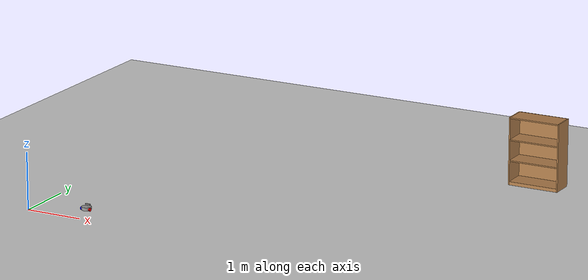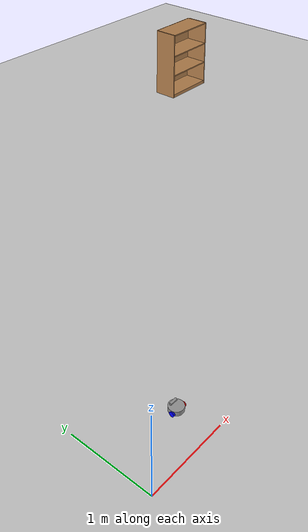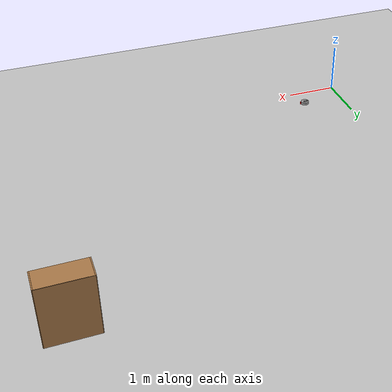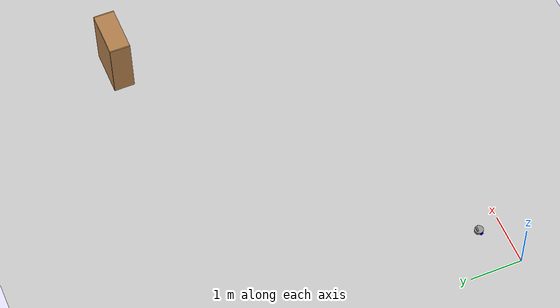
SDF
<sdf version="1.6">
 <world name="default">
  <light name="sun" type="directional">
   <pose>0 0 10 0 -0 0</pose>
   <diffuse>0.8 0.8 0.8 1</diffuse>
   <specular>0.2 0.2 0.2 1</specular>
   <attenuation>
    <range>1000</range>
    <constant>0.9</constant>
    <linear>0.01</linear>
    <quadratic>0.001</quadratic>
   </attenuation>
   <direction>-0.5 0.1 -0.9</direction>
  </light>
  <model name="ground_plane">
   <static>1</static>
   <link name="link">
    <collision name="collision">
     <geometry><plane><normal>0 0 1</normal><size>100 100</size></plane></geometry>
     <surface>
      <contact><collide_bitmask>65535</collide_bitmask></contact>
      <friction><ode><mu>100</mu><mu2>50</mu2></ode></friction>
     </surface>
    </collision>
    <visual name="visual">
     <cast_shadows>0</cast_shadows>
     <geometry><plane><normal>0 0 1</normal><size>100 100</size></plane></geometry>
     <material>
      <script><uri>file://media/materials/scripts/gazebo.material</uri><name>Gazebo/Grey</name></script>
     </material>
    </visual>
   </link>
  </model>
  <gravity>0 0 -9.8</gravity>
  <magnetic_field>6e-06 2.3e-05 -4.2e-05</magnetic_field>
  <atmosphere type="adiabatic"/>
  <physics name="default_physics" default="0" type="ode">
   <max_step_size>0.001</max_step_size>
   <real_time_factor>1</real_time_factor>
   <real_time_update_rate>1000</real_time_update_rate>
  </physics>
  <scene><ambient>0.4 0.4 0.4 1</ambient><background>0.7 0.7 0.7 1</background><shadows>1</shadows></scene>
  <audio><device>default</device></audio>
  <spherical_coordinates>
   <surface_model>EARTH_WGS84</surface_model>
   <latitude_deg>0</latitude_deg>
   <longitude_deg>0</longitude_deg>
   <elevation>0</elevation>
   <heading_deg>0</heading_deg>
  </spherical_coordinates>
  <model name="DDFR">
   <pose>0.866799 0.435848 0.02 -2.6e-05 -8e-06 1.53274</pose>
   <link name="d435">
    <pose>0.04 0 0.07 0 -0.2 0</pose>
    <inertial>
     <mass>0.01</mass>
     <inertia>
      <ixx>0.00166667</ixx>
      <ixy>0</ixy>
      <ixz>0</ixz>
      <iyy>0.00166667</iyy>
      <iyz>0</iyz>
      <izz>0.00166667</izz>
     </inertia>
    </inertial>
    <visual name="visual">
     <geometry><box><size>0.025 0.09 0.025</size></box></geometry>
     <material>
      <lighting>1</lighting>
      <script><uri>file://media/materials/scripts/gazebo.material</uri><name>Gazebo/Grey</name></script>
      <shader type="vertex"><normal_map>__default__</normal_map></shader>
      <ambient>0.3 0.3 0.3 1</ambient>
      <diffuse>0.7 0.7 0.7 1</diffuse>
      <specular>0.01 0.01 0.01 1</specular>
      <emissive>0 0 0 1</emissive>
     </material>
    </visual>
    <collision name="collision">
     <geometry><box><size>0.025 0.09 0.025</size></box></geometry>
     <surface>
      <friction>
       <ode><mu>1</mu><mu2>1</mu2><fdir1>0 0 0</fdir1><slip1>0</slip1><slip2>0</slip2></ode>
       <torsional>
        <coefficient>1</coefficient>
        <patch_radius>0</patch_radius>
        <surface_radius>0</surface_radius>
        <use_patch_radius>1</use_patch_radius>
        <ode><slip>0</slip></ode>
       </torsional>
      </friction>
      <bounce><restitution_coefficient>0</restitution_coefficient><threshold>1e+06</threshold></bounce>
      <contact>
       <collide_without_contact>0</collide_without_contact>
       <collide_without_contact_bitmask>1</collide_without_contact_bitmask>
       <collide_bitmask>1</collide_bitmask>
       <ode>
        <soft_cfm>0</soft_cfm>
        <soft_erp>0.2</soft_erp>
        <kp>1e+13</kp>
        <kd>1</kd>
        <max_vel>0.01</max_vel>
        <min_depth>0</min_depth>
       </ode>
       <bullet>
        <split_impulse>1</split_impulse>
        <split_impulse_penetration_threshold>-0.01</split_impulse_penetration_threshold>
        <soft_cfm>0</soft_cfm>
        <soft_erp>0.2</soft_erp>
        <kp>1e+13</kp>
        <kd>1</kd>
       </bullet>
      </contact>
     </surface>
    </collision>
    <sensor name="d435" type="camera">
     <update_rate>15</update_rate>
     <visualize>1</visualize>
     <camera name="color">
      <horizontal_fov>1.21126</horizontal_fov>
      <image><width>1920</width><height>1080</height><format>B8G8R8</format></image>
      <clip><near>0.1</near><far>100</far></clip>
      <noise><type>gaussian</type><mean>0</mean><stddev>0.007</stddev></noise>
     </camera>
     <plugin name="plugin_name" filename="libgazebo_ros_camera.so">
      <ros>
       <namespace>d435_c</namespace>
       <argument>camera/image_raw:=camera/color/image_raw</argument>
       <argument>camera/camera_info_raw:=camera/color/camera_info</argument>
      </ros>
      <camera_name>camera</camera_name>
      <frame_name>d435_link</frame_name>
      <hack_baseline>0.07</hack_baseline>
      <min_depth>0.001</min_depth>
     </plugin>
    </sensor>
    <sensor name="d435" type="depth">
     <update_rate>15</update_rate>
     <visualize>1</visualize>
     <camera name="depth_base">
      <horizontal_fov>1.59174</horizontal_fov>
      <image><width>640</width><height>480</height><format>B8G8R8</format></image>
      <noise><type>gaussian</type><mean>0</mean><stddev>0.007</stddev></noise>
      <depth_camera><output>depths</output></depth_camera>
      <clip><near>0.1</near><far>100</far></clip>
     </camera>
     <plugin name="plugin_name" filename="libgazebo_ros_camera.so">
      <ros>
       <namespace>d435</namespace>
       <argument>camera/image_raw:=camera/not_used_dummy/image_raw</argument>
       <argument>camera/camera_info_raw:=camera/not_used_dummy/camera_info</argument>
      </ros>
      <camera_name>camera</camera_name>
      <frame_name>d435_link</frame_name>
      <hack_baseline>0.07</hack_baseline>
      <min_depth>0.001</min_depth>
     </plugin>
    </sensor>
   </link>
   <link name="base_link">
    <pose>0 0 0.02 0 -0 0</pose>
    <inertial>
     <mass>0.2</mass>
     <inertia>
      <ixx>0.00026167</ixx>
      <ixy>0</ixy>
      <ixz>0</ixz>
      <iyy>0.00026167</iyy>
      <iyz>0</iyz>
      <izz>0.0004225</izz>
     </inertia>
    </inertial>
    <visual name="visual">
     <geometry><cylinder><radius>0.085</radius><length>0.055</length></cylinder></geometry>
     <material>
      <lighting>1</lighting>
      <script><uri>file://media/materials/scripts/gazebo.material</uri><name>Gazebo/Grey</name></script>
      <shader type="vertex"><normal_map>__default__</normal_map></shader>
      <ambient>0.3 0.3 0.3 1</ambient>
      <diffuse>0.7 0.7 0.7 1</diffuse>
      <specular>0.01 0.01 0.01 1</specular>
      <emissive>0 0 0 1</emissive>
     </material>
    </visual>
    <collision name="collision">
     <geometry><cylinder><radius>0.065</radius><length>0.055</length></cylinder></geometry>
     <surface>
      <friction>
       <ode><mu>1</mu><mu2>1</mu2><fdir1>0 0 0</fdir1><slip1>0</slip1><slip2>0</slip2></ode>
       <torsional>
        <coefficient>1</coefficient>
        <patch_radius>0</patch_radius>
        <surface_radius>0</surface_radius>
        <use_patch_radius>1</use_patch_radius>
        <ode><slip>0</slip></ode>
       </torsional>
      </friction>
      <bounce><restitution_coefficient>0</restitution_coefficient><threshold>1e+06</threshold></bounce>
      <contact>
       <collide_without_contact>0</collide_without_contact>
       <collide_without_contact_bitmask>1</collide_without_contact_bitmask>
       <collide_bitmask>1</collide_bitmask>
       <ode>
        <soft_cfm>0</soft_cfm>
        <soft_erp>0.2</soft_erp>
        <kp>1e+13</kp>
        <kd>1</kd>
        <max_vel>0.01</max_vel>
        <min_depth>0</min_depth>
       </ode>
       <bullet>
        <split_impulse>1</split_impulse>
        <split_impulse_penetration_threshold>-0.01</split_impulse_penetration_threshold>
        <soft_cfm>0</soft_cfm>
        <soft_erp>0.2</soft_erp>
        <kp>1e+13</kp>
        <kd>1</kd>
       </bullet>
      </contact>
     </surface>
    </collision>
   </link>
   <link name="caster">
    <inertial>
     <mass>0.1</mass>
     <inertia><ixx>4e-06</ixx><ixy>0</ixy><ixz>0</ixz><iyy>4e-06</iyy><iyz>0</iyz><izz>4e-06</izz></inertia>
    </inertial>
    <pose>0.05 0 -0.01 0 -0 0</pose>
    <visual name="visual">
     <geometry><sphere><radius>0.01</radius></sphere></geometry>
     <material>
      <lighting>1</lighting>
      <script><uri>file://media/materials/scripts/gazebo.material</uri><name>Gazebo/Grey</name></script>
      <shader type="vertex"><normal_map>__default__</normal_map></shader>
      <ambient>0.3 0.3 0.3 1</ambient>
      <diffuse>0.7 0.7 0.7 1</diffuse>
      <specular>0.01 0.01 0.01 1</specular>
      <emissive>0 0 0 1</emissive>
     </material>
    </visual>
    <collision name="collision">
     <geometry><sphere><radius>0.01</radius></sphere></geometry>
     <surface>
      <friction>
       <ode><mu>0</mu><mu2>0</mu2><fdir1>0 0 0</fdir1><slip1>0</slip1><slip2>0</slip2></ode>
       <torsional>
        <coefficient>1</coefficient>
        <patch_radius>0</patch_radius>
        <surface_radius>0</surface_radius>
        <use_patch_radius>1</use_patch_radius>
        <ode><slip>0</slip></ode>
       </torsional>
      </friction>
      <bounce><restitution_coefficient>0</restitution_coefficient><threshold>1e+06</threshold></bounce>
      <contact>
       <collide_without_contact>0</collide_without_contact>
       <collide_without_contact_bitmask>1</collide_without_contact_bitmask>
       <collide_bitmask>1</collide_bitmask>
       <ode>
        <soft_cfm>0</soft_cfm>
        <soft_erp>0.2</soft_erp>
        <kp>1e+13</kp>
        <kd>1</kd>
        <max_vel>0.01</max_vel>
        <min_depth>0</min_depth>
       </ode>
       <bullet>
        <split_impulse>1</split_impulse>
        <split_impulse_penetration_threshold>-0.01</split_impulse_penetration_threshold>
        <soft_cfm>0</soft_cfm>
        <soft_erp>0.2</soft_erp>
        <kp>1e+13</kp>
        <kd>1</kd>
       </bullet>
      </contact>
     </surface>
    </collision>
   </link>
   <link name="wheelL">
    <inertial>
     <mass>0.01</mass>
     <inertia>
      <ixx>2.77e-06</ixx>
      <ixy>0</ixy>
      <ixz>0</ixz>
      <iyy>2.77e-06</iyy>
      <iyz>0</iyz>
      <izz>4.5e-06</izz>
     </inertia>
    </inertial>
    <pose>-0.02 0.08 0.01 1.5708 -0 0</pose>
    <visual name="visual">
     <geometry><cylinder><radius>0.03</radius><length>0.025</length></cylinder></geometry>
     <material>
      <lighting>1</lighting>
      <script><uri>file://media/materials/scripts/gazebo.material</uri><name>Gazebo/Grey</name></script>
      <shader type="vertex"><normal_map>__default__</normal_map></shader>
      <ambient>0.3 0.3 0.3 1</ambient>
      <diffuse>0 0 1 1</diffuse>
      <specular>0.01 0.01 0.01 1</specular>
      <emissive>0 0 0 1</emissive>
     </material>
    </visual>
    <collision name="collision">
     <geometry><cylinder><radius>0.03</radius><length>0.025</length></cylinder></geometry>
     <surface>
      <friction>
       <ode><mu>0.5</mu><mu2>0.5</mu2><fdir1>0 0 0</fdir1><slip1>0</slip1><slip2>0</slip2></ode>
       <torsional>
        <coefficient>1</coefficient>
        <patch_radius>0</patch_radius>
        <surface_radius>0</surface_radius>
        <use_patch_radius>1</use_patch_radius>
        <ode><slip>0</slip></ode>
       </torsional>
      </friction>
      <bounce><restitution_coefficient>0</restitution_coefficient><threshold>1e+06</threshold></bounce>
      <contact>
       <collide_without_contact>0</collide_without_contact>
       <collide_without_contact_bitmask>1</collide_without_contact_bitmask>
       <collide_bitmask>1</collide_bitmask>
       <ode>
        <soft_cfm>0</soft_cfm>
        <soft_erp>0.2</soft_erp>
        <kp>1e+13</kp>
        <kd>1</kd>
        <max_vel>0.01</max_vel>
        <min_depth>0</min_depth>
       </ode>
       <bullet>
        <split_impulse>1</split_impulse>
        <split_impulse_penetration_threshold>-0.01</split_impulse_penetration_threshold>
        <soft_cfm>0</soft_cfm>
        <soft_erp>0.2</soft_erp>
        <kp>1e+13</kp>
        <kd>1</kd>
       </bullet>
      </contact>
     </surface>
    </collision>
   </link>
   <link name="wheelR">
    <inertial>
     <mass>0.01</mass>
     <inertia>
      <ixx>2.77e-06</ixx>
      <ixy>0</ixy>
      <ixz>0</ixz>
      <iyy>2.77e-06</iyy>
      <iyz>0</iyz>
      <izz>4.5e-06</izz>
     </inertia>
    </inertial>
    <pose>-0.02 -0.08 0.01 1.5708 -0 0</pose>
    <visual name="visual">
     <geometry><cylinder><radius>0.03</radius><length>0.025</length></cylinder></geometry>
     <material>
      <lighting>1</lighting>
      <script><uri>file://media/materials/scripts/gazebo.material</uri><name>Gazebo/Grey</name></script>
      <shader type="vertex"><normal_map>__default__</normal_map></shader>
      <ambient>0.3 0.3 0.3 1</ambient>
      <diffuse>1 0 0 1</diffuse>
      <specular>0.01 0.01 0.01 1</specular>
      <emissive>0 0 0 1</emissive>
     </material>
    </visual>
    <collision name="collision">
     <geometry><cylinder><radius>0.03</radius><length>0.025</length></cylinder></geometry>
     <surface>
      <friction>
       <ode><mu>0.5</mu><mu2>0.5</mu2><fdir1>0 0 0</fdir1><slip1>0</slip1><slip2>0</slip2></ode>
       <torsional>
        <coefficient>1</coefficient>
        <patch_radius>0</patch_radius>
        <surface_radius>0</surface_radius>
        <use_patch_radius>1</use_patch_radius>
        <ode><slip>0</slip></ode>
       </torsional>
      </friction>
      <bounce><restitution_coefficient>0</restitution_coefficient><threshold>1e+06</threshold></bounce>
      <contact>
       <collide_without_contact>0</collide_without_contact>
       <collide_without_contact_bitmask>1</collide_without_contact_bitmask>
       <collide_bitmask>1</collide_bitmask>
       <ode>
        <soft_cfm>0</soft_cfm>
        <soft_erp>0.2</soft_erp>
        <kp>1e+13</kp>
        <kd>1</kd>
        <max_vel>0.01</max_vel>
        <min_depth>0</min_depth>
       </ode>
       <bullet>
        <split_impulse>1</split_impulse>
        <split_impulse_penetration_threshold>-0.01</split_impulse_penetration_threshold>
        <soft_cfm>0</soft_cfm>
        <soft_erp>0.2</soft_erp>
        <kp>1e+13</kp>
        <kd>1</kd>
       </bullet>
      </contact>
     </surface>
    </collision>
   </link>
   <joint name="base_JOINT_caster" type="ball"><parent>base_link</parent><child>caster</child></joint>
   <joint name="left_wheel_joint" type="revolute">
    <parent>base_link</parent>
    <child>wheelL</child>
    <axis>
     <xyz>0 0 -1</xyz>
     <limit>
      <lower>-1.79769e+308</lower>
      <upper>1.79769e+308</upper>
      <effort>-1</effort>
      <velocity>-1</velocity>
     </limit>
     <use_parent_model_frame>0</use_parent_model_frame>
     <dynamics><spring_reference>0</spring_reference><spring_stiffness>0</spring_stiffness></dynamics>
    </axis>
   </joint>
   <joint name="right_wheel_joint" type="revolute">
    <parent>base_link</parent>
    <child>wheelR</child>
    <axis>
     <xyz>0 0 -1</xyz>
     <limit>
      <lower>-1.79769e+308</lower>
      <upper>1.79769e+308</upper>
      <effort>-1</effort>
      <velocity>-1</velocity>
     </limit>
     <use_parent_model_frame>0</use_parent_model_frame>
     <dynamics><spring_reference>0</spring_reference><spring_stiffness>0</spring_stiffness></dynamics>
    </axis>
   </joint>
   <plugin name="diff_drive" filename="libgazebo_ros_diff_drive.so">
    <ros><namespace>/robo</namespace><argument>cmd_vel:=cmd_vel</argument><argument>odom:=odom</argument></ros>
    <left_joint>left_wheel_joint</left_joint>
    <right_joint>right_wheel_joint</right_joint>
    <wheel_separation>0.16</wheel_separation>
    <wheel_diameter>0.03</wheel_diameter>
    <max_wheel_torque>20</max_wheel_torque>
    <max_wheel_acceleration>1.0</max_wheel_acceleration>
    <publish_odom>1</publish_odom>
    <publish_odom_tf>1</publish_odom_tf>
    <publish_wheel_tf>1</publish_wheel_tf>
    <odometry_frame>robo_odom</odometry_frame>
    <robot_base_frame>base_link</robot_base_frame>
   </plugin>
   <joint name="base_JOINT_camera" type="fixed"><parent>base_link</parent><child>d435</child></joint>
  </model>
  <model name="bookshelf">
   <static>1</static>
   <link name="link">
    <inertial><mass>1</mass></inertial>
    <collision name="back">
     <pose>0 0.005 0.6 0 -0 0</pose>
     <geometry><box><size>0.9 0.01 1.2</size></box></geometry>
    </collision>
    <visual name="visual1">
     <pose>0 0.005 0.6 0 -0 0</pose>
     <geometry><box><size>0.9 0.01 1.2</size></box></geometry>
     <material>
      <script><uri>file://media/materials/scripts/gazebo.material</uri><name>Gazebo/Wood</name></script>
     </material>
    </visual>
    <collision name="left_side">
     <pose>0.45 -0.195 0.6 0 -0 0</pose>
     <geometry><box><size>0.02 0.4 1.2</size></box></geometry>
    </collision>
    <visual name="visual2">
     <pose>0.45 -0.195 0.6 0 -0 0</pose>
     <geometry><box><size>0.02 0.4 1.2</size></box></geometry>
     <material>
      <script><uri>file://media/materials/scripts/gazebo.material</uri><name>Gazebo/Wood</name></script>
     </material>
    </visual>
    <collision name="right_side">
     <pose>-0.45 -0.195 0.6 0 -0 0</pose>
     <geometry><box><size>0.02 0.4 1.2</size></box></geometry>
    </collision>
    <visual name="visual3">
     <pose>-0.45 -0.195 0.6 0 -0 0</pose>
     <geometry><box><size>0.02 0.4 1.2</size></box></geometry>
     <material>
      <script><uri>file://media/materials/scripts/gazebo.material</uri><name>Gazebo/Wood</name></script>
     </material>
    </visual>
    <collision name="bottom">
     <pose>0 -0.195 0.03 0 -0 0</pose>
     <geometry><box><size>0.88 0.4 0.06</size></box></geometry>
    </collision>
    <visual name="visual4">
     <pose>0 -0.195 0.03 0 -0 0</pose>
     <geometry><box><size>0.88 0.4 0.06</size></box></geometry>
     <material>
      <script><uri>file://media/materials/scripts/gazebo.material</uri><name>Gazebo/Wood</name></script>
     </material>
    </visual>
    <collision name="top">
     <pose>0 -0.195 1.19 0 -0 0</pose>
     <geometry><box><size>0.88 0.4 0.02</size></box></geometry>
    </collision>
    <visual name="visual5">
     <pose>0 -0.195 1.19 0 -0 0</pose>
     <geometry><box><size>0.88 0.4 0.02</size></box></geometry>
     <material>
      <script><uri>file://media/materials/scripts/gazebo.material</uri><name>Gazebo/Wood</name></script>
     </material>
    </visual>
    <collision name="low_shelf">
     <pose>0 -0.195 0.43 0 -0 0</pose>
     <geometry><box><size>0.88 0.4 0.02</size></box></geometry>
    </collision>
    <visual name="visual6">
     <pose>0 -0.195 0.43 0 -0 0</pose>
     <geometry><box><size>0.88 0.4 0.02</size></box></geometry>
     <material>
      <script><uri>file://media/materials/scripts/gazebo.material</uri><name>Gazebo/Wood</name></script>
     </material>
    </visual>
    <collision name="high_shelf">
     <pose>0 -0.195 0.8 0 -0 0</pose>
     <geometry><box><size>0.88 0.4 0.02</size></box></geometry>
    </collision>
    <visual name="visual7">
     <pose>0 -0.195 0.8 0 -0 0</pose>
     <geometry><box><size>0.88 0.4 0.02</size></box></geometry>
     <material>
      <script><uri>file://media/materials/scripts/gazebo.material</uri><name>Gazebo/Wood</name></script>
     </material>
    </visual>
   </link>
   <pose>6.90749 5.44925 0 0 -0 0</pose>
  </model>
 </world>
</sdf>
